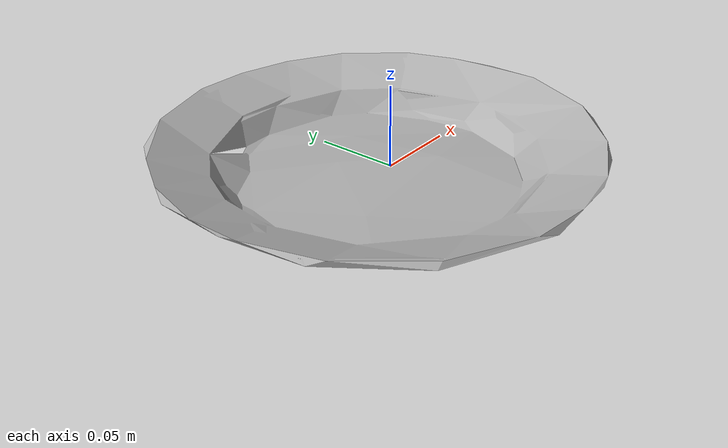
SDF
<?xml version='1.0'?>
<sdf version="1.4">
  <model name="029_plate">
    <static>false</static>
    <link name="link">
      <inertial>
        <pose>-0.011085327408156067 0.00039022592411073977 0.012118642564702131 0.34801987472380597 -1.5662225586174043 -2.3239343817418177</pose>
        <mass>0.0978327699667024</mass>
        <inertia>
          <ixx>0.000631175715150347</ixx>
          <ixy>3.878494633898281e-20</ixy>
          <ixz>1.2742769666571198e-19</ixz>
          <iyy>0.00032134714096633787</iyy>
          <iyz>-2.061859628586709e-20</iyz>
          <izz>0.00031982648723045845</izz>
        </inertia>
      </inertial>
      <collision name="collision">
        <geometry>
          <mesh>
            <!-- Use a downsampled mesh for collisions -->
            <uri>model:///029_plate/029_plate_250_collision.stl</uri>
	        </mesh>
        </geometry>
        <surface>
      </surface>
      </collision>
      <visual name="visual">
        <geometry>
          <mesh>
            <uri>model:///029_plate/textured.obj</uri>
	        </mesh>
        </geometry>
        <material>
          <script>
            <uri>model:///029_plate/029_plate.material</uri>
            <name>029_plate</name>
          </script>
        </material>
      </visual>
    </link>
  </model>
</sdf>
